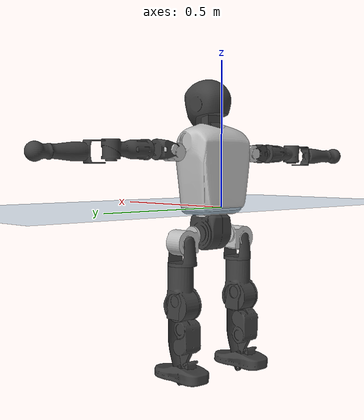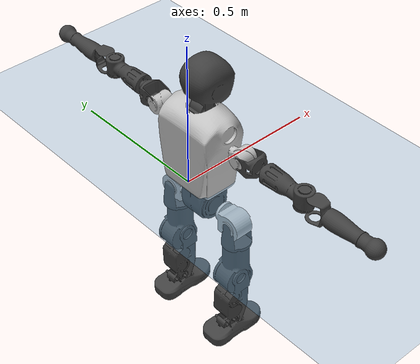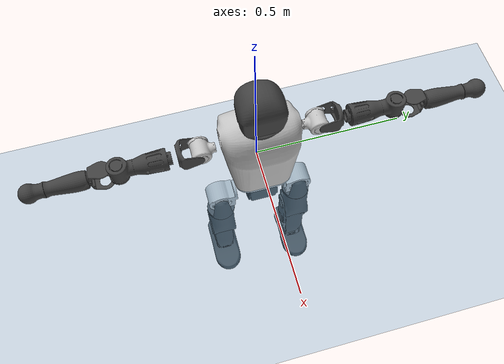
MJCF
<mujoco model="T1">
  <compiler angle="radian" assetdir="assets" balanceinertia="true" inertiafromgeom="false"/>

  <option timestep="0.005" density="1.2" viscosity="2e-05"/>

  <size nkey="1"/>

  <visual>
    <quality shadowsize="8192"/>
    <map shadowclip="0.5"/>
  </visual>

  <default>
    <default class="/">
      <joint armature="0.01" damping="0.01" frictionloss="0.1"/>
      <geom contype="0" conaffinity="0" group="1" solref="-1000 -80"/>
      <site size="0.01 0.005 0.005" group="5"/>
      <general forcelimited="true" biastype="affine" gainprm="25" biasprm="0 -25 -0.6"/>
      <default class="t1">
        <geom rgba="0.25 0.25 0.25 1"/>
        <default class="visual">
          <geom type="mesh" group="2"/>
        </default>
        <default class="collision">
          <geom group="3"/>
        </default>
        <default class="foot">
          <geom size="0.1115 0.05 0.015" type="box" condim="6" group="4" priority="1" solimp="0.015 1 0.015"/>
        </default>
        <default class="reward_collision_sphere">
          <geom group="5" rgba="1 0 0 1"/>
        </default>
      </default>
    </default>
  </default>

  <asset>
    <texture type="skybox" colorspace="auto" name="//unnamed_texture_0" builtin="gradient" rgb1="0.95 0.95 0.95" rgb2="0.95 0.95 0.95" width="100" height="600"/>
    <texture type="2d" colorspace="auto" name="texplane" builtin="checker" rgb1="0.345 0.575 0.748" rgb2="0.345 0.575 0.748" markrgb="1 1 1" width="512" height="512"/>
    <material name="MatPlane" class="/" texture="texplane" texuniform="true" texrepeat="2 2" specular="0.9"/>
    <mesh name="Trunk" class="/" file="Trunk.stl"/>
    <mesh name="H1" class="/" file="H1.stl"/>
    <mesh name="H2" class="/" file="H2.stl"/>
    <mesh name="AL1" class="/" file="AL1.stl"/>
    <mesh name="AL2" class="/" file="AL2.stl"/>
    <mesh name="AL3" class="/" file="AL3.stl"/>
    <mesh name="left_hand_link" class="/" file="left_hand_link.stl"/>
    <mesh name="AR1" class="/" file="AR1.stl"/>
    <mesh name="AR2" class="/" file="AR2.stl"/>
    <mesh name="AR3" class="/" file="AR3.stl"/>
    <mesh name="right_hand_link" class="/" file="right_hand_link.stl"/>
    <mesh name="Waist" class="/" file="Waist.stl"/>
    <mesh name="Hip_Pitch_Left" class="/" file="Hip_Pitch_Left.stl"/>
    <mesh name="Hip_Roll_Left" class="/" file="Hip_Roll_Left.stl"/>
    <mesh name="Hip_Yaw_Left" class="/" file="Hip_Yaw_Left.stl"/>
    <mesh name="Shank_Left" class="/" file="Shank_Left.stl"/>
    <mesh name="Ankle_Cross_Left" class="/" file="Ankle_Cross_Left.stl"/>
    <mesh name="left_foot_link" class="/" file="left_foot_link.stl"/>
    <mesh name="Hip_Pitch_Right" class="/" file="Hip_Pitch_Right.stl"/>
    <mesh name="Hip_Roll_Right" class="/" file="Hip_Roll_Right.stl"/>
    <mesh name="Hip_Yaw_Right" class="/" file="Hip_Yaw_Right.stl"/>
    <mesh name="Shank_Right" class="/" file="Shank_Right.stl"/>
    <mesh name="Ankle_Cross_Right" class="/" file="Ankle_Cross_Right.stl"/>
    <mesh name="right_foot_link" class="/" file="right_foot_link.stl"/>
  </asset>

  <worldbody>
    <geom name="floor" class="/" size="100 100 0.125" type="plane" group="0" material="MatPlane"/>
    <light name="toplight_shadow" class="/" pos="0 0 5" dir="0.0990148 0.0990148 -0.990148" type="directional" ambient="0.04 0.04 0.04" diffuse="0.55 0.55 0.55" specular="0.12 0.12 0.12"/>
    <light name="toplight_fill" class="/" pos="0 0 5" dir="0.0990148 0.0990148 -0.990148" type="directional" castshadow="false" ambient="0.04 0.04 0.04" diffuse="0.3 0.3 0.3" specular="0.08 0.08 0.08"/>
    <body name="trunk" childclass="t1" pos="-0.000252071 -0.00325984 0.00746595" quat="0.999991 -0.000581795 -0.0039163 -0.00140201">
      <inertial pos="0.0553212 -0.00195565 0.0897474" quat="0.999971 0.000841767 -0.00740459 -0.00139931" mass="14.638" diaginertia="0.0951075 0.321892 0.0244664"/>
      <joint name="//unnamed_joint_0" type="free" armature="0" damping="0" frictionloss="0"/>
      <geom name="//unnamed_geom_1" class="visual" rgba="0.76 0.76 0.76 1" mesh="Trunk"/>
      <geom name="//unnamed_geom_2" class="collision" size="0.0783245 0.104433 0.156649" pos="0.0592251 0 0.0996155" type="box"/>
      <geom name="//unnamed_geom_3" class="reward_collision_sphere" size="0.120098" pos="0.0592251 0 0.0830129"/>
      <geom name="//unnamed_geom_4" class="reward_collision_sphere" size="0.0156649" pos="0.0592251 0.11184 0"/>
      <geom name="//unnamed_geom_5" class="reward_collision_sphere" size="0.0156649" pos="0.0592251 -0.11184 0"/>
      <geom name="//unnamed_geom_6" class="reward_collision_sphere" size="0.0156649" pos="0.0592251 0.140787 0.149423"/>
      <geom name="//unnamed_geom_7" class="reward_collision_sphere" size="0.0156649" pos="0.0592251 -0.140787 0.149423"/>
      <site name="imu" pos="0.036357 -0.0107509 -0.00458612" size="0.0104433"/>
      <camera name="track" pos="0 -2.63153 0" quat="0.707107 0.707107 0 0" mode="trackcom"/>
      <camera name="ego_camera" pos="0.120424 0 0.348654" quat="-0.5 -0.5 0.5 0.5"/>
      <body name="H1" pos="0.0579006 -0.000719338 0.197386" quat="0.999994 0.00251955 0.00222889 0.000324565">
        <inertial pos="-0.00589085 -0.00362703 0.0486536" quat="0.760701 -0.0216652 0.00556857 0.648717" mass="0.495434" diaginertia="0.000225032 0.000830109 6.31644e-05"/>
        <joint name="AAHead_yaw" pos="0 0 0" axis="0.00049205 -0.0104652 0.999945" range="-1.38919 1.55723" armature="0.011451" damping="0.0137337" frictionloss="0.101836"/>
        <geom name="//unnamed_geom_8" class="visual" mesh="H1"/>
        <body name="H2" pos="-0.00165884 0.000625475 0.0467606" quat="0.999992 0.000947817 -0.00066856 -0.00379204">
          <inertial pos="0.0077624 0.00283956 0.0816635" quat="0.988367 0.107092 -0.0744319 -0.0782397" mass="0.797831" diaginertia="0.00201749 0.00808288 0.000683267"/>
          <joint name="Head_pitch" pos="0 0 0" axis="-0.00316228 -0.99938 -0.0350541" stiffness="0.00219379" range="-1.13574 0.202398" armature="0.0073038" damping="0" frictionloss="0.062836"/>
          <geom name="//unnamed_geom_9" class="visual" mesh="H2"/>
          <geom name="//unnamed_geom_10" class="collision" size="0.0835461" pos="0.00987086 0 0.0913142"/>
          <geom name="//unnamed_geom_11" class="reward_collision_sphere" size="0.0939894" pos="0.0197417 0 0.0830129"/>
        </body>
      </body>
      <body name="AL1" pos="0.0494392 0.137509 0.180034" quat="0.999999 -0.000356042 -0.000638391 0.000883072">
        <inertial pos="0.00740475 0.0600039 0.00125619" quat="0.500753 0.500794 -0.518061 0.479651" mass="0.622281" diaginertia="0.00133644 0.00467869 0.000116148"/>
        <joint name="Left_Shoulder_Pitch" pos="0 0 0" axis="0.0020142 0.999985 -0.00515153" range="-3.3332 1.21097" armature="0.0112944" damping="0" frictionloss="0.108127"/>
        <geom name="//unnamed_geom_12" class="visual" rgba="0.76 0.76 0.76 1" mesh="AL1"/>
        <body name="AL2" pos="0.00197401 0.0635904 0.00825906" quat="0.999993 0.000917655 0.000452784 -0.00355352">
          <inertial pos="0.00447651 0.0480475 0.00618199" quat="0.491662 0.508724 -0.488333 0.510881" mass="0.17366" diaginertia="0.000377166 0.00143448 7.1443e-05"/>
          <joint name="Left_Shoulder_Roll" pos="0 0 0" axis="-0.999298 -0.016281 -0.0337465" stiffness="0.000124753" range="-1.55762 1.71771" armature="0.0115597" damping="0.011695" frictionloss="0.143098"/>
          <geom name="//unnamed_geom_13" class="visual" mesh="AL2"/>
          <body name="AL3" pos="0.00782117 0.0812213 -0.000503911" quat="0.999999 -0.00120899 -0.000845467 -0.000104905">
            <inertial pos="-0.00162216 0.11249 -0.00644081" quat="0.705851 0.708361 -0.00026613 9.5059e-05" mass="1.14116" diaginertia="0.0119668 0.0494857 0.000252625"/>
            <joint name="Left_Elbow_Pitch" pos="0 0 0" axis="0.0219128 -0.999435 0.0254716" range="-2.24265 2.25428" armature="0.010306" damping="0.00117021" frictionloss="0.100079"/>
            <geom name="//unnamed_geom_14" class="visual" mesh="AL3"/>
            <geom name="//unnamed_geom_15" class="collision" size="0.0313298 0.0783245" pos="0 0.0657882 0" quat="0.707105 0.707108 0 0" type="cylinder"/>
            <geom name="//unnamed_geom_16" class="reward_collision_sphere" size="0.0375957"/>
            <body name="left_hand_link" pos="0.00338907 0.20052 -0.00833891" quat="1 -2.76695e-05 6.12172e-05 2.50601e-05">
              <inertial pos="-0.00010628 0.142817 -0.00366776" quat="0.710414 0.703737 -0.00170946 0.00797587" mass="0.338146" diaginertia="0.00753507 0.0274774 7.63146e-05"/>
              <joint name="Left_Elbow_Yaw" pos="0 0 0" axis="0.00946978 -0.0294415 0.999522" stiffness="0.017897" range="-2.43612 0.0377237" armature="0.0117857" damping="0.0187743" frictionloss="0.0882114"/>
              <geom name="//unnamed_geom_17" class="visual" mesh="left_hand_link"/>
              <geom name="//unnamed_geom_18" class="collision" size="0.0313298 0.0913786" pos="0 0.171049 0" quat="0.707105 0.707108 0 0" type="cylinder"/>
              <geom name="//unnamed_geom_19" class="reward_collision_sphere" size="0.0522163"/>
              <geom name="//unnamed_geom_20" class="reward_collision_sphere" size="0.0365514" pos="0 0.144734 0"/>
              <geom name="//unnamed_geom_21" class="reward_collision_sphere" size="0.0365514" pos="0 0.282889 0"/>
            </body>
          </body>
        </body>
      </body>
      <body name="AR1" pos="0.0521782 -0.13598 0.176233" quat="0.999993 0.000878184 0.00249146 0.00250807">
        <inertial pos="-0.00118375 -0.0580582 0.00128086" quat="0.507952 0.493546 -0.499367 0.499028" mass="0.590968" diaginertia="0.00136808 0.00514758 0.000114024"/>
        <joint name="Right_Shoulder_Pitch" pos="0 0 0" axis="0.0006891 -0.999981 0.0061191" stiffness="0.0275976" range="-1.22169 3.24442" armature="0.0101094" damping="0.0312839" frictionloss="0.11567"/>
        <geom name="//unnamed_geom_22" class="visual" rgba="0.76 0.76 0.76 1" mesh="AR1"/>
        <body name="AR2" pos="-0.000175654 -0.0610165 0.00100476" quat="0.999999 -0.000686447 -0.00107717 0.000802693">
          <inertial pos="0.00439904 -0.0491148 -0.00353393" quat="0.508941 0.48301 -0.513968 0.493475" mass="0.197747" diaginertia="0.000339086 0.00134012 7.56126e-05"/>
          <joint name="Right_Shoulder_Roll" pos="0 0 0" axis="-0.999924 0.00889158 0.00859069" range="-1.72223 1.58101" armature="0.0104549" damping="0.00260295" frictionloss="0.072465"/>
          <geom name="//unnamed_geom_23" class="visual" mesh="AR2"/>
          <body name="AR3" pos="0.00168045 -0.085012 -0.000552297" quat="1 -0.00042598 7.67418e-05 4.0952e-05">
            <inertial pos="0.00796515 -0.110211 0.0013698" quat="0.693638 0.720319 0.00240863 -0.000602173" mass="1.07443" diaginertia="0.0127763 0.0548889 0.000244316"/>
            <joint name="Right_Elbow_Pitch" pos="0 0 0" axis="-0.00921578 0.999956 -0.00162613" stiffness="0.0408008" range="-2.27484 2.30357" armature="0.0131883" damping="0.00475717" frictionloss="0.0932833"/>
            <geom name="//unnamed_geom_24" class="visual" mesh="AR3"/>
            <geom name="//unnamed_geom_25" class="collision" size="0.0313298 0.0783245" pos="0 -0.0657882 0" quat="0.707105 0.707108 0 0" type="cylinder"/>
            <geom name="//unnamed_geom_26" class="reward_collision_sphere" size="0.0375957"/>
            <body name="right_hand_link" pos="-0.00136935 -0.193025 -0.00813526" quat="1 -0.00011318 0.000110932 8.58917e-05">
              <inertial pos="0.00358167 -0.148694 0.000132188" quat="0.705181 0.709025 -0.00132586 0.0010885" mass="0.379885" diaginertia="0.00775546 0.0328748 8.4723e-05"/>
              <joint name="Right_Elbow_Yaw" pos="0 0 0" axis="-0.000589816 -0.00108553 0.999999" range="-0.0451003 2.43756" armature="0.010536" damping="0.0154768" frictionloss="0.115618"/>
              <geom name="//unnamed_geom_27" class="visual" mesh="right_hand_link"/>
              <geom name="//unnamed_geom_28" class="collision" size="0.0313298 0.0913786" pos="0 -0.171049 0" quat="0.707105 0.707108 0 0" type="cylinder"/>
              <geom name="//unnamed_geom_29" class="reward_collision_sphere" size="0.0522163"/>
              <geom name="//unnamed_geom_30" class="reward_collision_sphere" size="0.0365514" pos="0 -0.144734 0"/>
              <geom name="//unnamed_geom_31" class="reward_collision_sphere" size="0.0365514" pos="0 -0.282889 0"/>
            </body>
          </body>
        </body>
      </body>
      <body name="Waist" pos="0.0605635 -0.00277432 -0.100562" quat="1 -0.000295495 0.000212 0.000575567">
        <inertial pos="0.000528361 0.0014018 0.0055309" quat="0.984352 -0.00113758 -0.176168 -0.00372988" mass="2.96688" diaginertia="0.00530471 0.0194389 0.00196677"/>
        <joint name="Waist" pos="0 0 0" axis="0.0039034 -0.00333046 0.999987" stiffness="0.0110583" range="-1.48282 1.53385" armature="0.0112696" damping="0.0387364" frictionloss="0.104636"/>
        <geom name="//unnamed_geom_32" class="visual" mesh="Waist"/>
        <body name="Hip_Pitch_Left" pos="0.00422619 0.130869 -0.00668632" quat="0.999999 0.00104109 -6.15264e-05 0.000188222">
          <inertial pos="0.00407565 -0.00823209 -0.00672134" quat="0.974782 0.222865 0.0112872 -0.00202557" mass="1.05353" diaginertia="0.00161393 0.0058522 0.00050055"/>
          <joint name="Left_Hip_Pitch" pos="0 0 0" axis="-0.00663898 0.999906 0.0119791" stiffness="0.0234671" range="-1.907 1.59793" armature="0.0105609" damping="0.0329084" frictionloss="0.134146"/>
          <geom name="//unnamed_geom_33" class="visual" rgba="0.76 0.76 0.76 1" mesh="Hip_Pitch_Left"/>
          <body name="Hip_Roll_Left" pos="-0.000972152 0.000448297 -0.0209872" quat="1 0.000122547 -0.000161914 -0.000201595">
            <inertial pos="0.000476089 -0.00162195 -0.0447507" quat="0.710168 -0.00862735 -0.00854825 0.703928" mass="0.404416" diaginertia="0.00151764 0.00549231 0.000196173"/>
            <joint name="Left_Hip_Roll" pos="0 0 0" axis="-1 -0.000223248 -0.000146841" stiffness="0.00311338" range="-1.65038 0.203703" armature="0.0102455" damping="0" frictionloss="0.125377"/>
            <geom name="//unnamed_geom_34" class="visual" mesh="Hip_Roll_Left"/>
            <geom name="//unnamed_geom_35" class="reward_collision_sphere" size="0.057438"/>
            <body name="Hip_Yaw_Left" pos="0.00511569 0.00159826 -0.0771177" quat="1 5.60798e-05 -9.79381e-07 -9.16917e-05">
              <inertial pos="-0.00521679 0.00100171 -0.0670551" quat="0.696805 -0.0339297 -0.0315418 0.715763" mass="2.62264" diaginertia="0.02172 0.101833 0.00104698"/>
              <joint name="Left_Hip_Yaw" pos="0 0 0" axis="-0.0227325 0.00294274 -0.999737" stiffness="0.0416869" range="-1.03313 0.915289" armature="0.0126949" damping="0.0180784" frictionloss="0.137308"/>
              <geom name="//unnamed_geom_36" class="visual" mesh="Hip_Yaw_Left"/>
              <geom name="//unnamed_geom_37" class="collision" size="0.0522163 0.0835461" type="cylinder"/>
              <body name="Shank_Left" pos="-0.010745 -0.00686391 -0.11779" quat="0.999992 0.000356231 -0.00183805 -0.00353701">
                <inertial pos="-0.00750916 0.00927073 -0.103139" quat="0.998111 -0.00869533 -0.0437362 0.042255" mass="1.89962" diaginertia="0.0297615 0.129835 0.000735284"/>
                <joint name="Left_Knee_Pitch" pos="0 0 0" axis="0.00758929 0.999971 0.00115583" range="-0.0200628 2.3437" armature="0.00832755" damping="0" frictionloss="0.139993"/>
                <geom name="//unnamed_geom_38" class="visual" mesh="Shank_Left"/>
                <geom name="//unnamed_geom_39" class="collision" size="0.0522163 0.0783245" pos="0 0 -0.0996155" type="cylinder"/>
                <geom name="//unnamed_geom_40" class="reward_collision_sphere" size="0.0678812"/>
                <body name="Ankle_Cross_Left" pos="0.00817119 0.00021722 -0.233141" quat="1 -0.000109855 4.85229e-05 -4.25247e-05">
                  <inertial pos="-0.00123926 -0.00198403 -0.00465611" quat="0.418779 0.573004 0.535141 0.458164" mass="0.0837709" diaginertia="2.70488e-05 9.89151e-05 4.49878e-06"/>
                  <joint name="Left_Ankle_Pitch" pos="0 0 0" axis="0.0124898 0.999869 0.0102781" range="-0.881022 0.472544" armature="0.0107765" damping="0" frictionloss="0.0982944"/>
                  <geom name="//unnamed_geom_41" class="visual" mesh="Ankle_Cross_Left"/>
                  <body name="left_foot_link" pos="-0.00421434 0.00227484 -0.0113401" quat="0.999999 0.00122078 -0.00107105 0.000120557">
                    <inertial pos="0.00110511 0.000895248 -0.0162584" quat="-0.000889824 0.620695 0.00319762 0.784045" mass="0.81207" diaginertia="0.00266378 0.00916383 0.000885757"/>
                    <joint name="Left_Ankle_Roll" pos="0 0 0" axis="-0.99993 0.0075808 -0.00913476" range="-0.365618 0.419259" armature="0.0107749" damping="0" frictionloss="0.103028"/>
                    <geom name="//unnamed_geom_42" class="visual" mesh="left_foot_link"/>
                    <geom name="left_foot" class="foot" size="0.0875155 0.038459 0.0147715" pos="0.00987086 0 -0.0124519"/>
                    <geom name="//unnamed_geom_44" class="reward_collision_sphere" size="0.054305" pos="0.00987086 0 -0.0124519"/>
                    <geom name="//unnamed_geom_45" class="reward_collision_sphere" size="0.0313298" pos="0.0937731 -0.0302626 -0.0124519"/>
                    <geom name="//unnamed_geom_46" class="reward_collision_sphere" size="0.0313298" pos="-0.069096 -0.0302626 -0.0124519"/>
                    <site name="left_foot" class="foot" pos="0.00987086 0 -0.0124519" size="0.0104433"/>
                  </body>
                </body>
              </body>
            </body>
          </body>
        </body>
        <body name="Hip_Pitch_Right" pos="0.00406802 -0.141231 -0.00632432" quat="0.999994 0.000500243 -0.002512 -0.00248545">
          <inertial pos="0.000830681 0.0180924 -0.0139274" quat="0.973554 -0.227632 0.0184488 -0.00598678" mass="1.17541" diaginertia="0.00175485 0.00588243 0.000486061"/>
          <joint name="Right_Hip_Pitch" pos="0 0 0" axis="-0.000972928 -0.999947 0.0102523" stiffness="0.00903303" range="-1.62911 1.92011" armature="0.0103479" damping="0" frictionloss="0.0633723"/>
          <geom name="//unnamed_geom_47" class="visual" rgba="0.76 0.76 0.76 1" mesh="Hip_Pitch_Right"/>
          <body name="Hip_Roll_Right" pos="0.00618351 -0.00286289 -0.0212786" quat="1 0.000514074 0.000689958 -0.000114492">
            <inertial pos="0.00119014 -0.000848099 -0.0459053" quat="0.706829 -0.00497268 -0.00609617 0.707341" mass="0.439629" diaginertia="0.00182606 0.00598062 0.000203919"/>
            <joint name="Right_Hip_Roll" pos="0 0 0" axis="-0.999971 0.00753141 -0.00124983" stiffness="0.00639523" range="-0.266525 1.57453" armature="0.00933959" damping="0.00984797" frictionloss="0.0763839"/>
            <geom name="//unnamed_geom_48" class="visual" mesh="Hip_Roll_Right"/>
            <geom name="//unnamed_geom_49" class="reward_collision_sphere" size="0.057438"/>
            <body name="Hip_Yaw_Right" pos="-0.00553337 -0.000822831 -0.0737152" quat="1 0.000160081 0.00028732 -0.000132777">
              <inertial pos="-0.00132486 -0.00883604 -0.0727461" quat="0.710096 -0.0369876 -0.0302283 0.702482" mass="2.74177" diaginertia="0.0245607 0.110859 0.001139"/>
              <joint name="Right_Hip_Yaw" pos="0 0 0" axis="1.02502e-05 -2.71618e-05 -1" range="-0.977833 1.03108" armature="0.0108597" damping="0" frictionloss="0.103716"/>
              <geom name="//unnamed_geom_50" class="visual" mesh="Hip_Yaw_Right"/>
              <geom name="//unnamed_geom_51" class="collision" size="0.0522163 0.0835461" type="cylinder"/>
              <body name="Shank_Right" pos="-0.0181146 -0.00310344 -0.119345" quat="1 0.000543061 0.000199973 -3.34843e-05">
                <inertial pos="0.00347058 -4.84782e-05 -0.0983554" quat="0.997612 -0.0313838 -0.0475335 -0.0390536" mass="2.136" diaginertia="0.0355418 0.143073 0.000872475"/>
                <joint name="Right_Knee_Pitch" pos="0 0 0" axis="-0.00347174 -0.999972 -0.00669931" range="-2.3249 0.128074" armature="0.0110644" damping="0.00981662" frictionloss="0.124278"/>
                <geom name="//unnamed_geom_52" class="visual" mesh="Shank_Right"/>
                <geom name="//unnamed_geom_53" class="collision" size="0.0522163 0.0783245" pos="0 0 -0.0996155" type="cylinder"/>
                <geom name="//unnamed_geom_54" class="reward_collision_sphere" size="0.0678812"/>
                <body name="Ankle_Cross_Right" pos="0.0017078 0.00122652 -0.226599" quat="1 -4.68595e-06 3.31671e-07 8.75175e-07">
                  <inertial pos="-0.00602122 0.00207673 -0.00905294" quat="0.443594 0.542646 0.558295 0.443921" mass="0.0849297" diaginertia="2.71525e-05 9.77443e-05 4.39244e-06"/>
                  <joint name="Right_Ankle_Pitch" pos="0 0 0" axis="0.00726212 -0.999959 -0.005451" range="-0.535175 0.807315" armature="0.00945385" damping="0.00607036" frictionloss="0.104855"/>
                  <geom name="//unnamed_geom_55" class="visual" mesh="Ankle_Cross_Right"/>
                  <body name="right_foot_link" pos="-0.00331675 -0.00193816 -0.0134895" quat="0.999999 0.000853808 -0.000241176 -0.000518599">
                    <inertial pos="0.00159882 0.000448034 -0.0158568" quat="-0.00134274 0.619437 -0.00919222 0.784991" mass="0.769825" diaginertia="0.00251834 0.00986496 0.000862312"/>
                    <joint name="Right_Ankle_Roll" pos="0 0 0" axis="-0.999992 -0.00232506 -0.00330245" range="-0.457651 0.474157" armature="0.0116052" damping="0.00762776" frictionloss="0.0564638"/>
                    <geom name="//unnamed_geom_56" class="visual" mesh="right_foot_link"/>
                    <geom name="right_foot" class="foot" size="0.0977622 0.0686846 0.0103532" pos="0.00987086 0 -0.0124519"/>
                    <geom name="//unnamed_geom_58" class="reward_collision_sphere" size="0.0417731"/>
                    <geom name="//unnamed_geom_59" class="reward_collision_sphere" size="0.0313298" pos="0.00987086 0 -0.0124519"/>
                    <geom name="//unnamed_geom_60" class="reward_collision_sphere" size="0.0313298" pos="0.0937731 0.0302626 -0.0124519"/>
                    <geom name="//unnamed_geom_61" class="reward_collision_sphere" size="0.0313298" pos="-0.069096 0.0302626 -0.0124519"/>
                    <site name="right_foot" class="foot" pos="0.00987086 0 -0.0124519" size="0.0104433"/>
                  </body>
                </body>
              </body>
            </body>
          </body>
        </body>
      </body>
    </body>
  </worldbody>

  <contact>
    <pair class="/" geom1="floor" geom2="left_foot" name="//unnamed_contact_0"/>
    <pair class="/" geom1="floor" geom2="right_foot" name="//unnamed_contact_1"/>
  </contact>

  <actuator>
    <general name="AAHead_yaw" class="/" joint="AAHead_yaw" forcerange="-7.56716 7.56716" gainprm="22.9152" biasprm="0 -22.9152 -0.661876"/>
    <general name="Head_pitch" class="/" joint="Head_pitch" forcerange="-6.95936 6.95936" gainprm="22.9152" biasprm="0 -22.9152 -0.661876"/>
    <general name="Left_Shoulder_Pitch" class="/" joint="Left_Shoulder_Pitch" forcerange="-19.4848 19.4848" gainprm="22.9152" biasprm="0 -22.9152 -0.661876"/>
    <general name="Left_Shoulder_Roll" class="/" joint="Left_Shoulder_Roll" forcerange="-19.2562 19.2562" gainprm="22.9152" biasprm="0 -22.9152 -0.661876"/>
    <general name="Left_Elbow_Pitch" class="/" joint="Left_Elbow_Pitch" forcerange="-23.0048 23.0048" gainprm="22.9152" biasprm="0 -22.9152 -0.661876"/>
    <general name="Left_Elbow_Yaw" class="/" joint="Left_Elbow_Yaw" forcerange="-18.9214 18.9214" gainprm="22.9152" biasprm="0 -22.9152 -0.661876"/>
    <general name="Right_Shoulder_Pitch" class="/" joint="Right_Shoulder_Pitch" forcerange="-20.0051 20.0051" gainprm="22.9152" biasprm="0 -22.9152 -0.661876"/>
    <general name="Right_Shoulder_Roll" class="/" joint="Right_Shoulder_Roll" forcerange="-16.9141 16.9141" gainprm="22.9152" biasprm="0 -22.9152 -0.661876"/>
    <general name="Right_Elbow_Pitch" class="/" joint="Right_Elbow_Pitch" forcerange="-18.8953 18.8953" gainprm="22.9152" biasprm="0 -22.9152 -0.661876"/>
    <general name="Right_Elbow_Yaw" class="/" joint="Right_Elbow_Yaw" forcerange="-20.1862 20.1862" gainprm="22.9152" biasprm="0 -22.9152 -0.661876"/>
    <general name="Waist" class="/" joint="Waist" forcerange="-30.2894 30.2894" gainprm="22.9152" biasprm="0 -22.9152 -0.661876"/>
    <general name="Left_Hip_Pitch" class="/" joint="Left_Hip_Pitch" forcerange="-48.8321 48.8321" gainprm="22.9152" biasprm="0 -22.9152 -0.661876"/>
    <general name="Left_Hip_Roll" class="/" joint="Left_Hip_Roll" forcerange="-22.061 22.061" gainprm="22.9152" biasprm="0 -22.9152 -0.661876"/>
    <general name="Left_Hip_Yaw" class="/" joint="Left_Hip_Yaw" forcerange="-34.8034 34.8034" gainprm="22.9152" biasprm="0 -22.9152 -0.661876"/>
    <general name="Left_Knee_Pitch" class="/" joint="Left_Knee_Pitch" forcerange="-45.3883 45.3883" gainprm="22.9152" biasprm="0 -22.9152 -0.661876"/>
    <general name="Left_Ankle_Pitch" class="/" joint="Left_Ankle_Pitch" forcerange="-23.0401 23.0401" gainprm="22.9152" biasprm="0 -22.9152 -0.661876"/>
    <general name="Left_Ankle_Roll" class="/" joint="Left_Ankle_Roll" forcerange="-16.9597 16.9597" gainprm="22.9152" biasprm="0 -22.9152 -0.661876"/>
    <general name="Right_Hip_Pitch" class="/" joint="Right_Hip_Pitch" forcerange="-58.2537 58.2537" gainprm="22.9152" biasprm="0 -22.9152 -0.661876"/>
    <general name="Right_Hip_Roll" class="/" joint="Right_Hip_Roll" forcerange="-29.0829 29.0829" gainprm="22.9152" biasprm="0 -22.9152 -0.661876"/>
    <general name="Right_Hip_Yaw" class="/" joint="Right_Hip_Yaw" forcerange="-27.6259 27.6259" gainprm="22.9152" biasprm="0 -22.9152 -0.661876"/>
    <general name="Right_Knee_Pitch" class="/" joint="Right_Knee_Pitch" forcerange="-62.5642 62.5642" gainprm="22.9152" biasprm="0 -22.9152 -0.661876"/>
    <general name="Right_Ankle_Pitch" class="/" joint="Right_Ankle_Pitch" forcerange="-20.7573 20.7573" gainprm="22.9152" biasprm="0 -22.9152 -0.661876"/>
    <general name="Right_Ankle_Roll" class="/" joint="Right_Ankle_Roll" forcerange="-14.4174 14.4174" gainprm="22.9152" biasprm="0 -22.9152 -0.661876"/>
  </actuator>

  <sensor>
    <gyro site="imu" name="imu_angular_velocity"/>
    <velocimeter site="imu" name="imu_linear_velocity"/>
    <framelinvel objtype="site" objname="left_foot" name="left_foot_global_linear_velocity"/>
    <framelinvel objtype="site" objname="right_foot" name="right_foot_global_linear_velocity"/>
  </sensor>

  <keyframe>
    <key name="home" qpos="0 0 0.6385 1 0 0 0 0 0 0 1.4 0 -0.4 0 -1.4 0 0.4 0 -0.4 0 0 0.8 -0.4 0 0.4 0 0 -0.8 0.4 0"/>
  </keyframe>
</mujoco>
